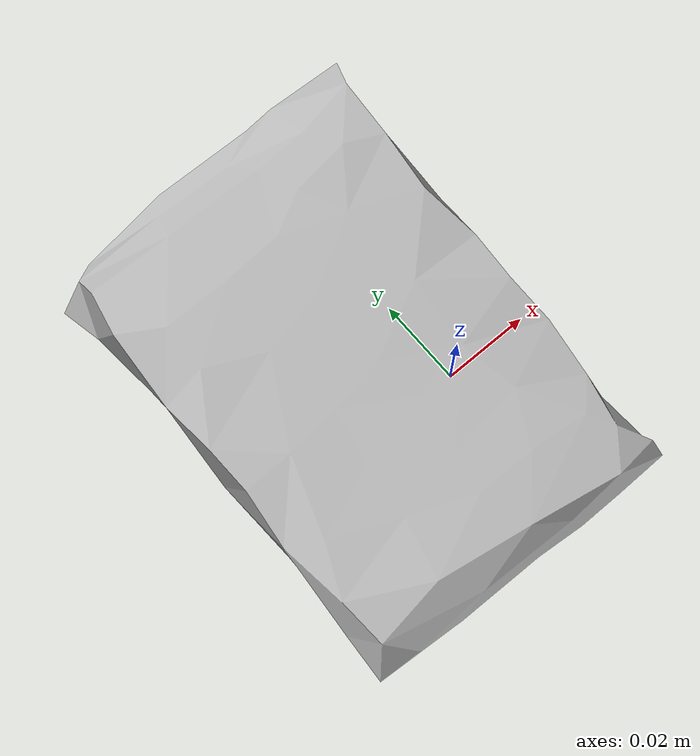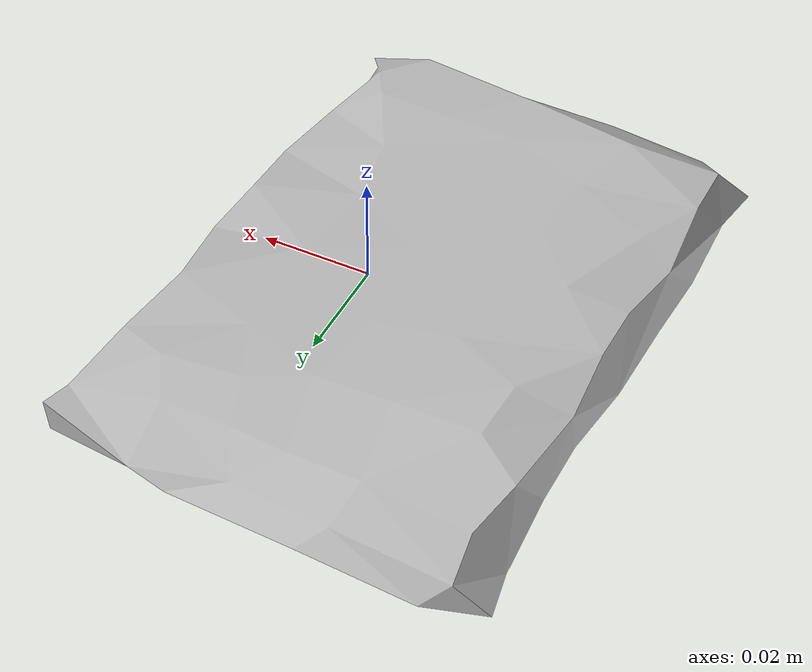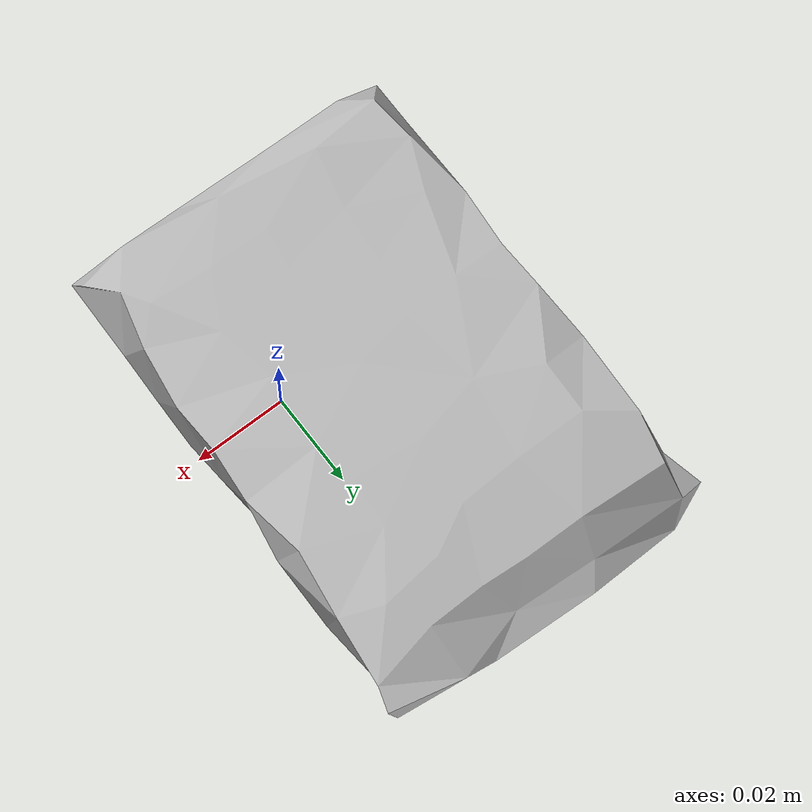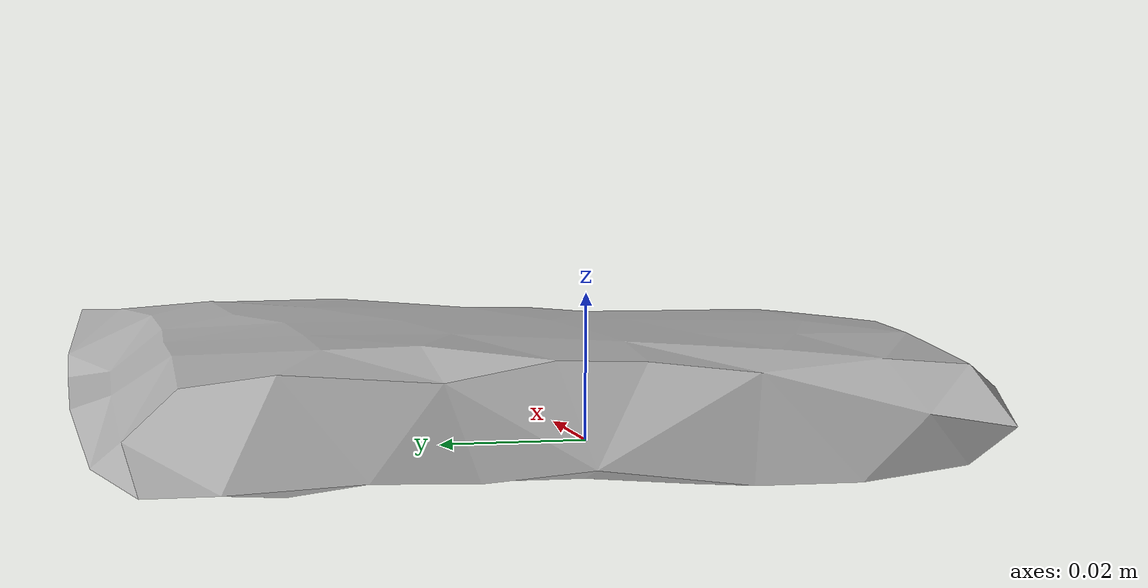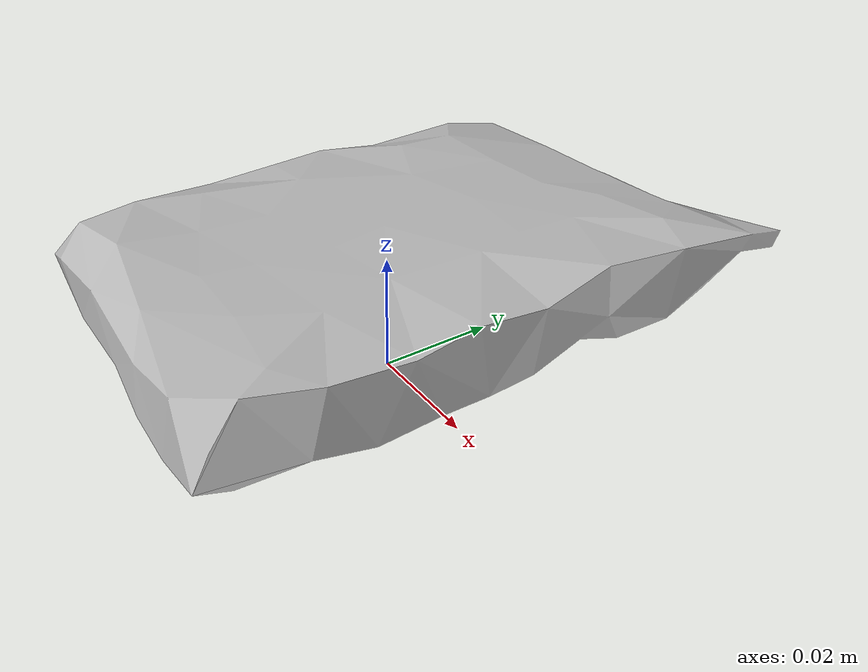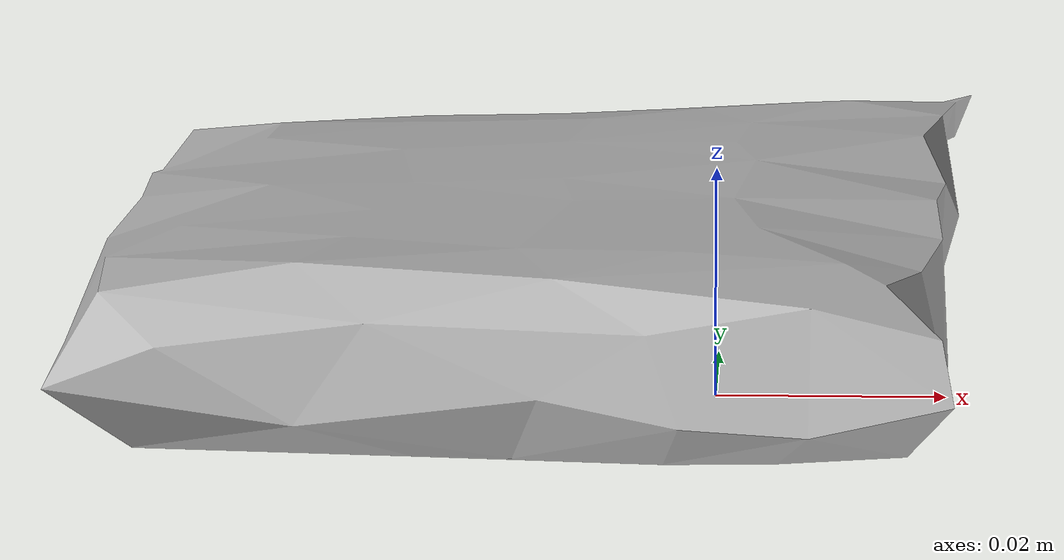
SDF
<?xml version='1.0'?>
<sdf version="1.4">
  <model name="026_sponge">
    <static>false</static>
    <link name="link">
      <inertial>
        <pose>-0.016106132899921063 0.012537307883498766 0.009232393123810882 -1.1890141512446044 1.5451461707108123 0.3726326338656761</pose>
        <mass>0.01301512352422622</mass>
        <inertia>
          <ixx>1.7221825471012386e-05</ixx>
          <ixy>-3.2665112294762103e-22</ixy>
          <ixz>-4.965680861264547e-22</ixz>
          <iyy>1.184026919383329e-05</iyy>
          <iyz>-1.7642115897806717e-23</iyz>
          <izz>5.983371571213889e-06</izz>
        </inertia>
      </inertial>
      <collision name="collision">
        <geometry>
          <mesh>
            <!-- Use a downsampled mesh for collisions -->
            <uri>model:///026_sponge/026_sponge_250_collision.stl</uri>
	        </mesh>
        </geometry>
        <surface>
      </surface>
      </collision>
      <visual name="visual">
        <geometry>
          <mesh>
            <uri>model:///026_sponge/textured.obj</uri>
	        </mesh>
        </geometry>
        <material>
          <script>
            <uri>model:///026_sponge/026_sponge.material</uri>
            <name>026_sponge</name>
          </script>
        </material>
      </visual>
    </link>
  </model>
</sdf>
